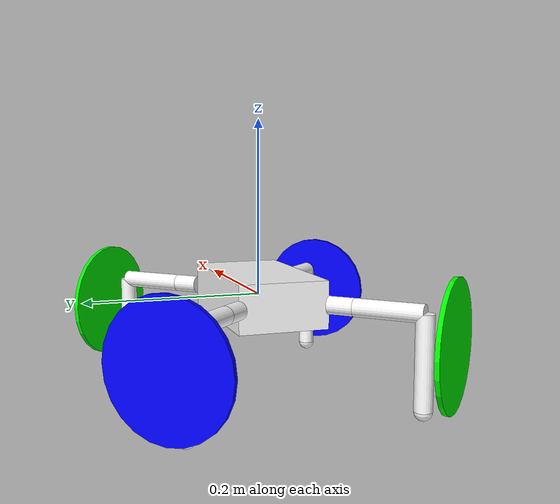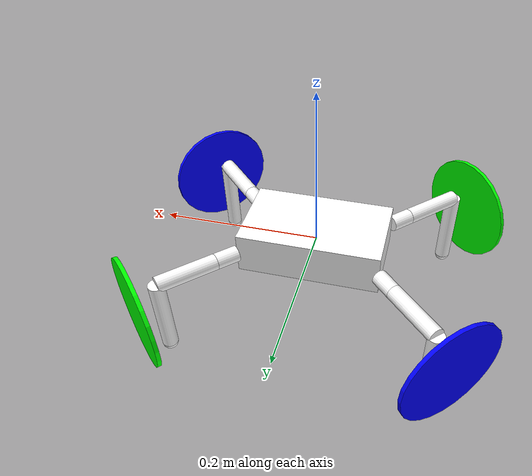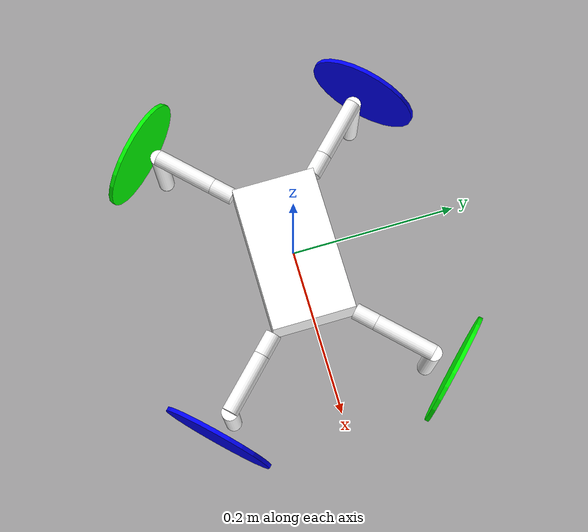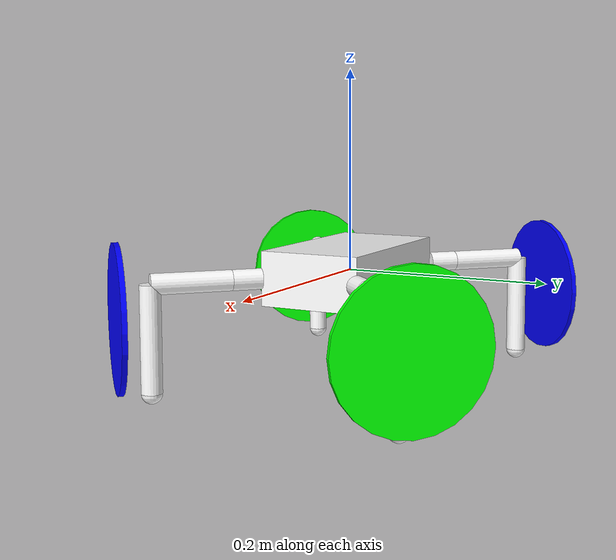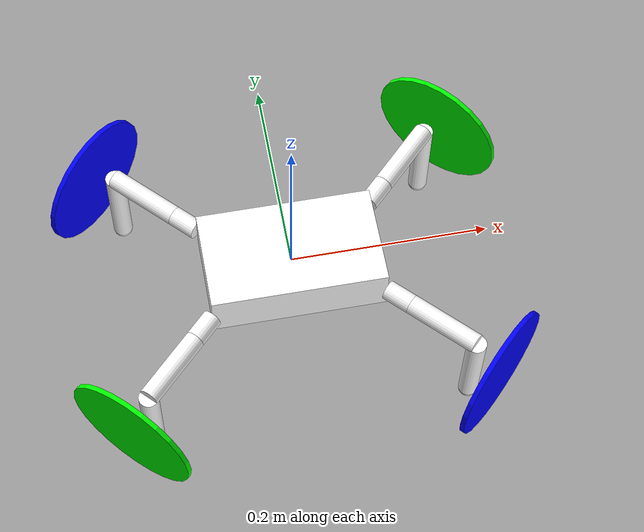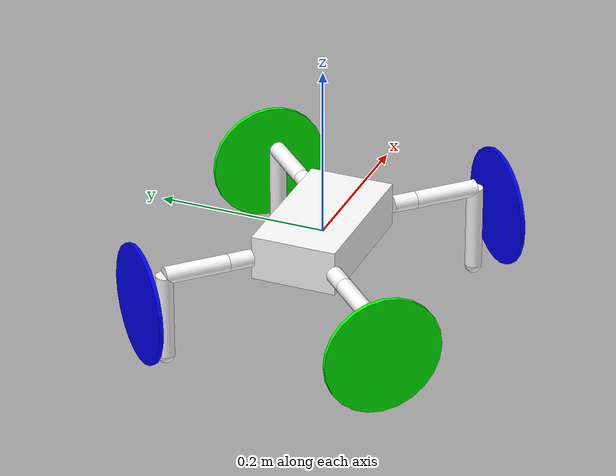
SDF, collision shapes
<sdf version="1.7">
  <model name="quadruped_copter">
    <link name="base_link">
      <inertial>
        <pose>0 0 0 0 -0 0</pose>
        <mass>0.5</mass>
        <inertia>
          <ixx>0.000542083</ixx>
          <ixy>0</ixy>
          <ixz>0</ixz>
          <iyy>0.00142242</iyy>
          <iyz>0</iyz>
          <izz>0.00173042</izz>
        </inertia>
      </inertial>
      <collision name="base_link_collision">
        <pose>0 0 0 0 -0 0</pose>
        <geometry>
          <box>
            <size>0.177 0.101 0.053</size>
          </box>
        </geometry>
        <surface>
          <friction>
            <ode>
              <mu2>1</mu2>
              <fdir1>1 0 0</fdir1>
              <mu1>1.0</mu1>
            </ode>
          </friction>
          <contact>
            <ode>
              <kp>1e+15</kp>
              <kd>1e+13</kd>
            </ode>
          </contact>
        </surface>
      </collision>
      <visual name="base_link_visual">
        <pose>0 0 -0.0265 0 -0 0</pose>
        <geometry>
          <mesh>
            <scale>1 1 1</scale>
            <uri>model://quadruped/meshes/hexapod_body.dae</uri>
          </mesh>
        </geometry>
        <material>
          <ambient>1 1 1</ambient>
          <diffuse>1 1 1</diffuse>
          <specular>1 1 1</specular>
          <pbr>
            <metal>
              <albedo_map>model://quadruped/materials/textures/silver_blue_metal/silver_blue_metal_diffuse.jpg</albedo_map>
              <metalness_map>model://quadruped/materials/textures/silver_blue_metal/silver_blue_metal_metallic.jpg</metalness_map>
              <normal_map>model://quadruped/materials/textures/silver_blue_metal/silver_blue_metal_normal.jpg</normal_map>
              <roughness_map>model://quadruped/materials/textures/silver_blue_metal/silver_blue_metal_roughness.jpg</roughness_map>
              <roughness>1.0</roughness>
              <metalness>1.0</metalness>
            </metal>
          </pbr>
        </material>
      </visual>
      <gravity>1</gravity>
      <velocity_decay/>
    </link>
    <joint name="coxa_bl_joint" type="revolute">
      <pose relative_to="base_link">-0.0885 0.0505 0 0 -0 2.35619</pose>
      <parent>base_link</parent>
      <child>coxa_bl_link</child>
      <axis>
        <xyz>0 0 1</xyz>
        <limit>
          <lower>-1.5708</lower>
          <upper>1.5708</upper>
          <effort>100</effort>
          <velocity>0.5</velocity>
        </limit>
        <dynamics>
          <spring_reference>0</spring_reference>
          <spring_stiffness>0</spring_stiffness>
        </dynamics>
      </axis>
      <physics>
        <ode>
          <limit>
            <cfm>0</cfm>
            <erp>0.2</erp>
          </limit>
        </ode>
      </physics>
    </joint>
    <link name="coxa_bl_link">
      <pose relative_to="coxa_bl_joint">0 0 0 0 -0 0</pose>
      <inertial>
        <pose>0.01425 0 0 0 1.5708 0</pose>
        <mass>0.1</mass>
        <inertia>
          <ixx>9.26875e-06</ixx>
          <ixy>0</ixy>
          <ixz>0</ixz>
          <iyy>9.26875e-06</iyy>
          <iyz>0</iyz>
          <izz>5e-06</izz>
        </inertia>
      </inertial>
      <collision name="coxa_bl_link_collision">
        <pose>0.01425 0 0 0 1.5708 0</pose>
        <geometry>
          <cylinder>
            <length>0.0285</length>
            <radius>0.01</radius>
          </cylinder>
        </geometry>
        <surface>
          <friction>
            <ode>
              <mu2>1</mu2>
              <fdir1>1 0 0</fdir1>
              <mu1>1.0</mu1>
            </ode>
          </friction>
          <contact>
            <ode/>
          </contact>
        </surface>
      </collision>
      <visual name="coxa_bl_link_visual">
        <pose>0 0 0.0196 0 -0 0</pose>
        <geometry>
          <mesh>
            <scale>1 1 1</scale>
            <uri>model://quadruped/meshes/hexapod_coxa_l.dae</uri>
          </mesh>
        </geometry>
        <material>
          <ambient>1 1 1</ambient>
          <diffuse>1 1 1</diffuse>
          <specular>1 1 1</specular>
          <pbr>
            <metal>
              <albedo_map>model://quadruped/materials/textures/silver_blue_metal/silver_blue_metal_diffuse.jpg</albedo_map>
              <metalness_map>model://quadruped/materials/textures/silver_blue_metal/silver_blue_metal_metallic.jpg</metalness_map>
              <normal_map>model://quadruped/materials/textures/silver_blue_metal/silver_blue_metal_normal.jpg</normal_map>
              <roughness_map>model://quadruped/materials/textures/silver_blue_metal/silver_blue_metal_roughness.jpg</roughness_map>
              <roughness>1.0</roughness>
              <metalness>1.0</metalness>
            </metal>
          </pbr>
        </material>
      </visual>
      <gravity>1</gravity>
      <velocity_decay/>
    </link>
    <joint name="femur_bl_joint" type="revolute">
      <pose relative_to="coxa_bl_link">0.0285 0 0 0 -0 0</pose>
      <parent>coxa_bl_link</parent>
      <child>femur_bl_link</child>
      <axis>
        <xyz>0 1 0</xyz>
        <limit>
          <lower>-1.5708</lower>
          <upper>1.5708</upper>
          <effort>100</effort>
          <velocity>0.5</velocity>
        </limit>
        <dynamics>
          <spring_reference>0</spring_reference>
          <spring_stiffness>0</spring_stiffness>
        </dynamics>
      </axis>
      <physics>
        <ode>
          <limit>
            <cfm>0</cfm>
            <erp>0.2</erp>
          </limit>
        </ode>
      </physics>
    </joint>
    <link name="femur_bl_link">
      <pose relative_to="femur_bl_joint">0 0 0 0 -0 0</pose>
      <inertial>
        <pose>0.0381 0 0 0 1.5708 0</pose>
        <mass>0.1</mass>
        <inertia>
          <ixx>5.0887e-05</ixx>
          <ixy>0</ixy>
          <ixz>0</ixz>
          <iyy>5.0887e-05</iyy>
          <iyz>0</iyz>
          <izz>5e-06</izz>
        </inertia>
      </inertial>
      <collision name="femur_bl_link_collision">
        <pose>0.0381 0 0 0 1.5708 0</pose>
        <geometry>
          <cylinder>
            <length>0.0762</length>
            <radius>0.01</radius>
          </cylinder>
        </geometry>
        <surface>
          <friction>
            <ode>
              <mu2>1</mu2>
              <fdir1>1 0 0</fdir1>
              <mu1>1.0</mu1>
            </ode>
          </friction>
          <contact>
            <ode/>
          </contact>
        </surface>
      </collision>
      <visual name="femur_bl_link_visual">
        <pose>0 -0.026 0 0 -0 0</pose>
        <geometry>
          <mesh>
            <scale>1 1 1</scale>
            <uri>model://quadruped/meshes/hexapod_femur_l.dae</uri>
          </mesh>
        </geometry>
        <material>
          <ambient>1 1 1</ambient>
          <diffuse>1 1 1</diffuse>
          <specular>1 1 1</specular>
          <pbr>
            <metal>
              <albedo_map>model://quadruped/materials/textures/silver_blue_metal/silver_blue_metal_diffuse.jpg</albedo_map>
              <metalness_map>model://quadruped/materials/textures/silver_blue_metal/silver_blue_metal_metallic.jpg</metalness_map>
              <normal_map>model://quadruped/materials/textures/silver_blue_metal/silver_blue_metal_normal.jpg</normal_map>
              <roughness_map>model://quadruped/materials/textures/silver_blue_metal/silver_blue_metal_roughness.jpg</roughness_map>
              <roughness>1.0</roughness>
              <metalness>1.0</metalness>
            </metal>
          </pbr>
        </material>
      </visual>
      <gravity>1</gravity>
      <velocity_decay/>
    </link>
    <joint name="tibia_bl_joint" type="revolute">
      <pose relative_to="femur_bl_link">0.0762 0 0 0 -0 0</pose>
      <parent>femur_bl_link</parent>
      <child>tibia_bl_link</child>
      <axis>
        <xyz>0 1 0</xyz>
        <limit>
          <lower>-1.5708</lower>
          <upper>1.5708</upper>
          <effort>100</effort>
          <velocity>0.5</velocity>
        </limit>
        <dynamics>
          <spring_reference>0</spring_reference>
          <spring_stiffness>0</spring_stiffness>
        </dynamics>
      </axis>
      <physics>
        <ode>
          <limit>
            <cfm>0</cfm>
            <erp>0.2</erp>
          </limit>
        </ode>
      </physics>
    </joint>
    <link name="tibia_bl_link">
      <pose relative_to="tibia_bl_joint">0 0 0 0 -0 0</pose>
      <inertial>
        <pose>0 0 -0.051 0 -0 0</pose>
        <mass>0.1</mass>
        <inertia>
          <ixx>8.92e-05</ixx>
          <ixy>0</ixy>
          <ixz>0</ixz>
          <iyy>8.92e-05</iyy>
          <iyz>0</iyz>
          <izz>5e-06</izz>
        </inertia>
      </inertial>
      <collision name="tibia_bl_link_collision">
        <pose>0 0 -0.051 0 -0 0</pose>
        <geometry>
          <cylinder>
            <length>0.102</length>
            <radius>0.01</radius>
          </cylinder>
        </geometry>
        <surface>
          <friction>
            <ode>
              <mu2>1</mu2>
              <fdir1>1 0 0</fdir1>
              <mu1>1.0</mu1>
            </ode>
          </friction>
          <contact>
            <ode/>
          </contact>
        </surface>
      </collision>
      <collision name="tibia_bl_link_fixed_joint_lump__foot_bl_link_collision_1">
        <pose>0 0 -0.102 0 -0 0</pose>
        <geometry>
          <sphere>
            <radius>0.01</radius>
          </sphere>
        </geometry>
        <surface>
          <friction>
            <ode>
              <mu2>1</mu2>
              <fdir1>1 0 0</fdir1>
              <mu1>1.0</mu1>
            </ode>
            <torsional>
              <coefficient>1</coefficient>
              <surface_radius>0.01</surface_radius>
              <use_patch_radius>0</use_patch_radius>
            </torsional>
          </friction>
          <contact>
            <ode>
              <kp>1e+15</kp>
              <kd>1e+13</kd>
            </ode>
          </contact>
        </surface>
      </collision>
      <visual name="tibia_bl_link_visual">
        <pose>0 -0.0185 0 0 -0 0</pose>
        <geometry>
          <mesh>
            <scale>1 1 1</scale>
            <uri>model://quadruped/meshes/hexapod_tibia_l.dae</uri>
          </mesh>
        </geometry>
        <material>
          <ambient>1 1 1</ambient>
          <diffuse>1 1 1</diffuse>
          <specular>1 1 1</specular>
          <pbr>
            <metal>
              <albedo_map>model://quadruped/materials/textures/silver_blue_metal/silver_blue_metal_diffuse.jpg</albedo_map>
              <metalness_map>model://quadruped/materials/textures/silver_blue_metal/silver_blue_metal_metallic.jpg</metalness_map>
              <normal_map>model://quadruped/materials/textures/silver_blue_metal/silver_blue_metal_normal.jpg</normal_map>
              <roughness_map>model://quadruped/materials/textures/silver_blue_metal/silver_blue_metal_roughness.jpg</roughness_map>
              <roughness>1.0</roughness>
              <metalness>1.0</metalness>
            </metal>
          </pbr>
        </material>
      </visual>
      <velocity_decay/>
      <gravity>1</gravity>
      <velocity_decay/>
    </link>
    <joint name="coxa_br_joint" type="revolute">
      <pose relative_to="base_link">-0.0885 -0.0505 0 0 0 -2.35619</pose>
      <parent>base_link</parent>
      <child>coxa_br_link</child>
      <axis>
        <xyz>0 0 1</xyz>
        <limit>
          <lower>-1.5708</lower>
          <upper>1.5708</upper>
          <effort>100</effort>
          <velocity>0.5</velocity>
        </limit>
        <dynamics>
          <spring_reference>0</spring_reference>
          <spring_stiffness>0</spring_stiffness>
        </dynamics>
      </axis>
      <physics>
        <ode>
          <limit>
            <cfm>0</cfm>
            <erp>0.2</erp>
          </limit>
        </ode>
      </physics>
    </joint>
    <link name="coxa_br_link">
      <pose relative_to="coxa_br_joint">0 0 0 0 -0 0</pose>
      <inertial>
        <pose>0.01425 0 0 0 1.5708 0</pose>
        <mass>0.1</mass>
        <inertia>
          <ixx>9.26875e-06</ixx>
          <ixy>0</ixy>
          <ixz>0</ixz>
          <iyy>9.26875e-06</iyy>
          <iyz>0</iyz>
          <izz>5e-06</izz>
        </inertia>
      </inertial>
      <collision name="coxa_br_link_collision">
        <pose>0.01425 0 0 0 1.5708 0</pose>
        <geometry>
          <cylinder>
            <length>0.0285</length>
            <radius>0.01</radius>
          </cylinder>
        </geometry>
        <surface>
          <friction>
            <ode>
              <mu2>1</mu2>
              <fdir1>1 0 0</fdir1>
              <mu1>1.0</mu1>
            </ode>
          </friction>
          <contact>
            <ode/>
          </contact>
        </surface>
      </collision>
      <visual name="coxa_br_link_visual">
        <pose>0 0 0.0196 0 -0 0</pose>
        <geometry>
          <mesh>
            <scale>1 1 1</scale>
            <uri>model://quadruped/meshes/hexapod_coxa_r.dae</uri>
          </mesh>
        </geometry>
        <material>
          <ambient>1 1 1</ambient>
          <diffuse>1 1 1</diffuse>
          <specular>1 1 1</specular>
          <pbr>
            <metal>
              <albedo_map>model://quadruped/materials/textures/silver_blue_metal/silver_blue_metal_diffuse.jpg</albedo_map>
              <metalness_map>model://quadruped/materials/textures/silver_blue_metal/silver_blue_metal_metallic.jpg</metalness_map>
              <normal_map>model://quadruped/materials/textures/silver_blue_metal/silver_blue_metal_normal.jpg</normal_map>
              <roughness_map>model://quadruped/materials/textures/silver_blue_metal/silver_blue_metal_roughness.jpg</roughness_map>
              <roughness>1.0</roughness>
              <metalness>1.0</metalness>
            </metal>
          </pbr>
        </material>
      </visual>
      <gravity>1</gravity>
      <velocity_decay/>
    </link>
    <joint name="femur_br_joint" type="revolute">
      <pose relative_to="coxa_br_link">0.0285 0 0 0 -0 0</pose>
      <parent>coxa_br_link</parent>
      <child>femur_br_link</child>
      <axis>
        <xyz>0 1 0</xyz>
        <limit>
          <lower>-1.5708</lower>
          <upper>1.5708</upper>
          <effort>100</effort>
          <velocity>0.5</velocity>
        </limit>
        <dynamics>
          <spring_reference>0</spring_reference>
          <spring_stiffness>0</spring_stiffness>
        </dynamics>
      </axis>
      <physics>
        <ode>
          <limit>
            <cfm>0</cfm>
            <erp>0.2</erp>
          </limit>
        </ode>
      </physics>
    </joint>
    <link name="femur_br_link">
      <pose relative_to="femur_br_joint">0 0 0 0 -0 0</pose>
      <inertial>
        <pose>0.0381 0 0 0 1.5708 0</pose>
        <mass>0.1</mass>
        <inertia>
          <ixx>5.0887e-05</ixx>
          <ixy>0</ixy>
          <ixz>0</ixz>
          <iyy>5.0887e-05</iyy>
          <iyz>0</iyz>
          <izz>5e-06</izz>
        </inertia>
      </inertial>
      <collision name="femur_br_link_collision">
        <pose>0.0381 0 0 0 1.5708 0</pose>
        <geometry>
          <cylinder>
            <length>0.0762</length>
            <radius>0.01</radius>
          </cylinder>
        </geometry>
        <surface>
          <friction>
            <ode>
              <mu2>1</mu2>
              <fdir1>1 0 0</fdir1>
              <mu1>1.0</mu1>
            </ode>
          </friction>
          <contact>
            <ode/>
          </contact>
        </surface>
      </collision>
      <visual name="femur_br_link_visual">
        <pose>0 0.026 0 0 -0 0</pose>
        <geometry>
          <mesh>
            <scale>1 1 1</scale>
            <uri>model://quadruped/meshes/hexapod_femur_r.dae</uri>
          </mesh>
        </geometry>
        <material>
          <ambient>1 1 1</ambient>
          <diffuse>1 1 1</diffuse>
          <specular>1 1 1</specular>
          <pbr>
            <metal>
              <albedo_map>model://quadruped/materials/textures/silver_blue_metal/silver_blue_metal_diffuse.jpg</albedo_map>
              <metalness_map>model://quadruped/materials/textures/silver_blue_metal/silver_blue_metal_metallic.jpg</metalness_map>
              <normal_map>model://quadruped/materials/textures/silver_blue_metal/silver_blue_metal_normal.jpg</normal_map>
              <roughness_map>model://quadruped/materials/textures/silver_blue_metal/silver_blue_metal_roughness.jpg</roughness_map>
              <roughness>1.0</roughness>
              <metalness>1.0</metalness>
            </metal>
          </pbr>
        </material>
      </visual>
      <gravity>1</gravity>
      <velocity_decay/>
    </link>
    <joint name="tibia_br_joint" type="revolute">
      <pose relative_to="femur_br_link">0.0762 0 0 0 -0 0</pose>
      <parent>femur_br_link</parent>
      <child>tibia_br_link</child>
      <axis>
        <xyz>0 1 0</xyz>
        <limit>
          <lower>-1.5708</lower>
          <upper>1.5708</upper>
          <effort>100</effort>
          <velocity>0.5</velocity>
        </limit>
        <dynamics>
          <spring_reference>0</spring_reference>
          <spring_stiffness>0</spring_stiffness>
        </dynamics>
      </axis>
      <physics>
        <ode>
          <limit>
            <cfm>0</cfm>
            <erp>0.2</erp>
          </limit>
        </ode>
      </physics>
    </joint>
    <link name="tibia_br_link">
      <pose relative_to="tibia_br_joint">0 0 0 0 -0 0</pose>
      <inertial>
        <pose>0 0 -0.051 0 -0 0</pose>
        <mass>0.1</mass>
        <inertia>
          <ixx>8.92e-05</ixx>
          <ixy>0</ixy>
          <ixz>0</ixz>
          <iyy>8.92e-05</iyy>
          <iyz>0</iyz>
          <izz>5e-06</izz>
        </inertia>
      </inertial>
      <collision name="tibia_br_link_collision">
        <pose>0 0 -0.051 0 -0 0</pose>
        <geometry>
          <cylinder>
            <length>0.102</length>
            <radius>0.01</radius>
          </cylinder>
        </geometry>
        <surface>
          <friction>
            <ode>
              <mu2>1</mu2>
              <fdir1>1 0 0</fdir1>
              <mu1>1.0</mu1>
            </ode>
          </friction>
          <contact>
            <ode/>
          </contact>
        </surface>
      </collision>
      <collision name="tibia_br_link_fixed_joint_lump__foot_br_link_collision_1">
        <pose>0 0 -0.102 0 -0 0</pose>
        <geometry>
          <sphere>
            <radius>0.01</radius>
          </sphere>
        </geometry>
        <surface>
          <friction>
            <ode>
              <mu2>1</mu2>
              <fdir1>1 0 0</fdir1>
              <mu1>1.0</mu1>
            </ode>
            <torsional>
              <coefficient>1</coefficient>
              <surface_radius>0.01</surface_radius>
              <use_patch_radius>0</use_patch_radius>
            </torsional>
          </friction>
          <contact>
            <ode>
              <kp>1e+15</kp>
              <kd>1e+13</kd>
            </ode>
          </contact>
        </surface>
      </collision>
      <visual name="tibia_br_link_visual">
        <pose>0 0.0185 0 0 -0 0</pose>
        <geometry>
          <mesh>
            <scale>1 1 1</scale>
            <uri>model://quadruped/meshes/hexapod_tibia_r.dae</uri>
          </mesh>
        </geometry>
        <material>
          <ambient>1 1 1</ambient>
          <diffuse>1 1 1</diffuse>
          <specular>1 1 1</specular>
          <pbr>
            <metal>
              <albedo_map>model://quadruped/materials/textures/silver_blue_metal/silver_blue_metal_diffuse.jpg</albedo_map>
              <metalness_map>model://quadruped/materials/textures/silver_blue_metal/silver_blue_metal_metallic.jpg</metalness_map>
              <normal_map>model://quadruped/materials/textures/silver_blue_metal/silver_blue_metal_normal.jpg</normal_map>
              <roughness_map>model://quadruped/materials/textures/silver_blue_metal/silver_blue_metal_roughness.jpg</roughness_map>
              <roughness>1.0</roughness>
              <metalness>1.0</metalness>
            </metal>
          </pbr>
        </material>
      </visual>
      <velocity_decay/>
      <gravity>1</gravity>
      <velocity_decay/>
    </link>
    <joint name="coxa_fl_joint" type="revolute">
      <pose relative_to="base_link">0.0885 0.0505 0 0 -0 0.785398</pose>
      <parent>base_link</parent>
      <child>coxa_fl_link</child>
      <axis>
        <xyz>0 0 1</xyz>
        <limit>
          <lower>-1.5708</lower>
          <upper>1.5708</upper>
          <effort>100</effort>
          <velocity>0.5</velocity>
        </limit>
        <dynamics>
          <spring_reference>0</spring_reference>
          <spring_stiffness>0</spring_stiffness>
        </dynamics>
      </axis>
      <physics>
        <ode>
          <limit>
            <cfm>0</cfm>
            <erp>0.2</erp>
          </limit>
        </ode>
      </physics>
    </joint>
    <link name="coxa_fl_link">
      <pose relative_to="coxa_fl_joint">0 0 0 0 -0 0</pose>
      <inertial>
        <pose>0.01425 0 0 0 1.5708 0</pose>
        <mass>0.1</mass>
        <inertia>
          <ixx>9.26875e-06</ixx>
          <ixy>0</ixy>
          <ixz>0</ixz>
          <iyy>9.26875e-06</iyy>
          <iyz>0</iyz>
          <izz>5e-06</izz>
        </inertia>
      </inertial>
      <collision name="coxa_fl_link_collision">
        <pose>0.01425 0 0 0 1.5708 0</pose>
        <geometry>
          <cylinder>
            <length>0.0285</length>
            <radius>0.01</radius>
          </cylinder>
        </geometry>
        <surface>
          <friction>
            <ode>
              <mu2>1</mu2>
              <fdir1>1 0 0</fdir1>
              <mu1>1.0</mu1>
            </ode>
          </friction>
          <contact>
            <ode/>
          </contact>
        </surface>
      </collision>
      <visual name="coxa_fl_link_visual">
        <pose>0 0 0.0196 0 -0 0</pose>
        <geometry>
          <mesh>
            <scale>1 1 1</scale>
            <uri>model://quadruped/meshes/hexapod_coxa_l.dae</uri>
          </mesh>
        </geometry>
        <material>
          <ambient>1 1 1</ambient>
          <diffuse>1 1 1</diffuse>
          <specular>1 1 1</specular>
          <pbr>
            <metal>
              <albedo_map>model://quadruped/materials/textures/silver_blue_metal/silver_blue_metal_diffuse.jpg</albedo_map>
              <metalness_map>model://quadruped/materials/textures/silver_blue_metal/silver_blue_metal_metallic.jpg</metalness_map>
              <normal_map>model://quadruped/materials/textures/silver_blue_metal/silver_blue_metal_normal.jpg</normal_map>
              <roughness_map>model://quadruped/materials/textures/silver_blue_metal/silver_blue_metal_roughness.jpg</roughness_map>
              <roughness>1.0</roughness>
              <metalness>1.0</metalness>
            </metal>
          </pbr>
        </material>
      </visual>
      <gravity>1</gravity>
      <velocity_decay/>
    </link>
    <joint name="femur_fl_joint" type="revolute">
      <pose relative_to="coxa_fl_link">0.0285 0 0 0 -0 0</pose>
      <parent>coxa_fl_link</parent>
      <child>femur_fl_link</child>
      <axis>
        <xyz>0 1 0</xyz>
        <limit>
          <lower>-1.5708</lower>
          <upper>1.5708</upper>
          <effort>100</effort>
          <velocity>0.5</velocity>
        </limit>
        <dynamics>
          <spring_reference>0</spring_reference>
          <spring_stiffness>0</spring_stiffness>
        </dynamics>
      </axis>
      <physics>
        <ode>
          <limit>
            <cfm>0</cfm>
            <erp>0.2</erp>
          </limit>
        </ode>
      </physics>
    </joint>
    <link name="femur_fl_link">
      <pose relative_to="femur_fl_joint">0 0 0 0 -0 0</pose>
      <inertial>
        <pose>0.0381 0 0 0 1.5708 0</pose>
        <mass>0.1</mass>
        <inertia>
          <ixx>5.0887e-05</ixx>
          <ixy>0</ixy>
          <ixz>0</ixz>
          <iyy>5.0887e-05</iyy>
          <iyz>0</iyz>
          <izz>5e-06</izz>
        </inertia>
      </inertial>
      <collision name="femur_fl_link_collision">
        <pose>0.0381 0 0 0 1.5708 0</pose>
        <geometry>
          <cylinder>
            <length>0.0762</length>
            <radius>0.01</radius>
          </cylinder>
        </geometry>
        <surface>
          <friction>
            <ode>
              <mu2>1</mu2>
              <fdir1>1 0 0</fdir1>
              <mu1>1.0</mu1>
            </ode>
          </friction>
          <contact>
            <ode/>
          </contact>
        </surface>
      </collision>
      <visual name="femur_fl_link_visual">
        <pose>0 -0.026 0 0 -0 0</pose>
        <geometry>
          <mesh>
            <scale>1 1 1</scale>
            <uri>model://quadruped/meshes/hexapod_femur_l.dae</uri>
          </mesh>
        </geometry>
        <material>
          <ambient>1 1 1</ambient>
          <diffuse>1 1 1</diffuse>
          <specular>1 1 1</specular>
          <pbr>
            <metal>
              <albedo_map>model://quadruped/materials/textures/silver_blue_metal/silver_blue_metal_diffuse.jpg</albedo_map>
              <metalness_map>model://quadruped/materials/textures/silver_blue_metal/silver_blue_metal_metallic.jpg</metalness_map>
              <normal_map>model://quadruped/materials/textures/silver_blue_metal/silver_blue_metal_normal.jpg</normal_map>
              <roughness_map>model://quadruped/materials/textures/silver_blue_metal/silver_blue_metal_roughness.jpg</roughness_map>
              <roughness>1.0</roughness>
              <metalness>1.0</metalness>
            </metal>
          </pbr>
        </material>
      </visual>
      <gravity>1</gravity>
      <velocity_decay/>
    </link>
    <joint name="tibia_fl_joint" type="revolute">
      <pose relative_to="femur_fl_link">0.0762 0 0 0 -0 0</pose>
      <parent>femur_fl_link</parent>
      <child>tibia_fl_link</child>
      <axis>
        <xyz>0 1 0</xyz>
        <limit>
          <lower>-1.5708</lower>
          <upper>1.5708</upper>
          <effort>100</effort>
          <velocity>0.5</velocity>
        </limit>
        <dynamics>
          <spring_reference>0</spring_reference>
          <spring_stiffness>0</spring_stiffness>
        </dynamics>
      </axis>
      <physics>
        <ode>
          <limit>
            <cfm>0</cfm>
            <erp>0.2</erp>
          </limit>
        </ode>
      </physics>
    </joint>
    <link name="tibia_fl_link">
      <pose relative_to="tibia_fl_joint">0 0 0 0 -0 0</pose>
      <inertial>
        <pose>0 0 -0.051 0 -0 0</pose>
        <mass>0.1</mass>
        <inertia>
          <ixx>8.92e-05</ixx>
          <ixy>0</ixy>
          <ixz>0</ixz>
          <iyy>8.92e-05</iyy>
          <iyz>0</iyz>
          <izz>5e-06</izz>
        </inertia>
      </inertial>
      <collision name="tibia_fl_link_collision">
        <pose>0 0 -0.051 0 -0 0</pose>
        <geometry>
          <cylinder>
            <length>0.102</length>
            <radius>0.01</radius>
          </cylinder>
        </geometry>
        <surface>
          <friction>
            <ode>
              <mu2>1</mu2>
              <fdir1>1 0 0</fdir1>
              <mu1>1.0</mu1>
            </ode>
          </friction>
          <contact>
            <ode/>
          </contact>
        </surface>
      </collision>
      <collision name="tibia_fl_link_fixed_joint_lump__foot_fl_link_collision_1">
        <pose>0 0 -0.102 0 -0 0</pose>
        <geometry>
          <sphere>
            <radius>0.01</radius>
          </sphere>
        </geometry>
        <surface>
          <friction>
            <ode>
              <mu2>1</mu2>
              <fdir1>1 0 0</fdir1>
              <mu1>1.0</mu1>
            </ode>
            <torsional>
              <coefficient>1</coefficient>
              <surface_radius>0.01</surface_radius>
              <use_patch_radius>0</use_patch_radius>
            </torsional>
          </friction>
          <contact>
            <ode>
              <kp>1e+15</kp>
              <kd>1e+13</kd>
            </ode>
          </contact>
        </surface>
      </collision>
      <visual name="tibia_fl_link_visual">
        <pose>0 -0.0185 0 0 -0 0</pose>
        <geometry>
          <mesh>
            <scale>1 1 1</scale>
            <uri>model://quadruped/meshes/hexapod_tibia_l.dae</uri>
          </mesh>
        </geometry>
        <material>
          <ambient>1 1 1</ambient>
          <diffuse>1 1 1</diffuse>
          <specular>1 1 1</specular>
          <pbr>
            <metal>
              <albedo_map>model://quadruped/materials/textures/silver_blue_metal/silver_blue_metal_diffuse.jpg</albedo_map>
              <metalness_map>model://quadruped/materials/textures/silver_blue_metal/silver_blue_metal_metallic.jpg</metalness_map>
              <normal_map>model://quadruped/materials/textures/silver_blue_metal/silver_blue_metal_normal.jpg</normal_map>
              <roughness_map>model://quadruped/materials/textures/silver_blue_metal/silver_blue_metal_roughness.jpg</roughness_map>
              <roughness>1.0</roughness>
              <metalness>1.0</metalness>
            </metal>
          </pbr>
        </material>
      </visual>
      <velocity_decay/>
      <gravity>1</gravity>
      <velocity_decay/>
    </link>
    <joint name="coxa_fr_joint" type="revolute">
      <pose relative_to="base_link">0.0885 -0.0505 0 0 0 -0.785398</pose>
      <parent>base_link</parent>
      <child>coxa_fr_link</child>
      <axis>
        <xyz>0 0 1</xyz>
        <limit>
          <lower>-1.5708</lower>
          <upper>1.5708</upper>
          <effort>100</effort>
          <velocity>0.5</velocity>
        </limit>
        <dynamics>
          <spring_reference>0</spring_reference>
          <spring_stiffness>0</spring_stiffness>
        </dynamics>
      </axis>
      <physics>
        <ode>
          <limit>
            <cfm>0</cfm>
            <erp>0.2</erp>
          </limit>
        </ode>
      </physics>
    </joint>
    <link name="coxa_fr_link">
      <pose relative_to="coxa_fr_joint">0 0 0 0 -0 0</pose>
      <inertial>
        <pose>0.01425 0 0 0 1.5708 0</pose>
        <mass>0.1</mass>
        <inertia>
          <ixx>9.26875e-06</ixx>
          <ixy>0</ixy>
          <ixz>0</ixz>
          <iyy>9.26875e-06</iyy>
          <iyz>0</iyz>
          <izz>5e-06</izz>
        </inertia>
      </inertial>
      <collision name="coxa_fr_link_collision">
        <pose>0.01425 0 0 0 1.5708 0</pose>
        <geometry>
          <cylinder>
            <length>0.0285</length>
            <radius>0.01</radius>
          </cylinder>
        </geometry>
        <surface>
          <friction>
            <ode>
              <mu2>1</mu2>
              <fdir1>1 0 0</fdir1>
              <mu1>1.0</mu1>
            </ode>
          </friction>
          <contact>
            <ode/>
          </contact>
        </surface>
      </collision>
      <visual name="coxa_fr_link_visual">
        <pose>0 0 0.0196 0 -0 0</pose>
        <geometry>
          <mesh>
            <scale>1 1 1</scale>
            <uri>model://quadruped/meshes/hexapod_coxa_r.dae</uri>
          </mesh>
        </geometry>
        <material>
          <ambient>1 1 1</ambient>
          <diffuse>1 1 1</diffuse>
          <specular>1 1 1</specular>
          <pbr>
            <metal>
              <albedo_map>model://quadruped/materials/textures/silver_blue_metal/silver_blue_metal_diffuse.jpg</albedo_map>
              <metalness_map>model://quadruped/materials/textures/silver_blue_metal/silver_blue_metal_metallic.jpg</metalness_map>
              <normal_map>model://quadruped/materials/textures/silver_blue_metal/silver_blue_metal_normal.jpg</normal_map>
              <roughness_map>model://quadruped/materials/textures/silver_blue_metal/silver_blue_metal_roughness.jpg</roughness_map>
              <roughness>1.0</roughness>
              <metalness>1.0</metalness>
            </metal>
          </pbr>
        </material>
      </visual>
      <gravity>1</gravity>
      <velocity_decay/>
    </link>
    <joint name="femur_fr_joint" type="revolute">
      <pose relative_to="coxa_fr_link">0.0285 0 0 0 -0 0</pose>
      <parent>coxa_fr_link</parent>
      <child>femur_fr_link</child>
      <axis>
        <xyz>0 1 0</xyz>
        <limit>
          <lower>-1.5708</lower>
          <upper>1.5708</upper>
          <effort>100</effort>
          <velocity>0.5</velocity>
        </limit>
        <dynamics>
          <spring_reference>0</spring_reference>
          <spring_stiffness>0</spring_stiffness>
        </dynamics>
      </axis>
      <physics>
        <ode>
          <limit>
            <cfm>0</cfm>
            <erp>0.2</erp>
          </limit>
        </ode>
      </physics>
    </joint>
    <link name="femur_fr_link">
      <pose relative_to="femur_fr_joint">0 0 0 0 -0 0</pose>
      <inertial>
        <pose>0.0381 0 0 0 1.5708 0</pose>
        <mass>0.1</mass>
        <inertia>
          <ixx>5.0887e-05</ixx>
          <ixy>0</ixy>
          <ixz>0</ixz>
          <iyy>5.0887e-05</iyy>
          <iyz>0</iyz>
          <izz>5e-06</izz>
        </inertia>
      </inertial>
      <collision name="femur_fr_link_collision">
        <pose>0.0381 0 0 0 1.5708 0</pose>
        <geometry>
          <cylinder>
            <length>0.0762</length>
            <radius>0.01</radius>
          </cylinder>
        </geometry>
        <surface>
          <friction>
            <ode>
              <mu2>1</mu2>
              <fdir1>1 0 0</fdir1>
              <mu1>1.0</mu1>
            </ode>
          </friction>
          <contact>
            <ode/>
          </contact>
        </surface>
      </collision>
      <visual name="femur_fr_link_visual">
        <pose>0 0.026 0 0 -0 0</pose>
        <geometry>
          <mesh>
            <scale>1 1 1</scale>
            <uri>model://quadruped/meshes/hexapod_femur_r.dae</uri>
          </mesh>
        </geometry>
        <material>
          <ambient>1 1 1</ambient>
          <diffuse>1 1 1</diffuse>
          <specular>1 1 1</specular>
          <pbr>
            <metal>
              <albedo_map>model://quadruped/materials/textures/silver_blue_metal/silver_blue_metal_diffuse.jpg</albedo_map>
              <metalness_map>model://quadruped/materials/textures/silver_blue_metal/silver_blue_metal_metallic.jpg</metalness_map>
              <normal_map>model://quadruped/materials/textures/silver_blue_metal/silver_blue_metal_normal.jpg</normal_map>
              <roughness_map>model://quadruped/materials/textures/silver_blue_metal/silver_blue_metal_roughness.jpg</roughness_map>
              <roughness>1.0</roughness>
              <metalness>1.0</metalness>
            </metal>
          </pbr>
        </material>
      </visual>
      <gravity>1</gravity>
      <velocity_decay/>
    </link>
    <joint name="tibia_fr_joint" type="revolute">
      <pose relative_to="femur_fr_link">0.0762 0 0 0 -0 0</pose>
      <parent>femur_fr_link</parent>
      <child>tibia_fr_link</child>
      <axis>
        <xyz>0 1 0</xyz>
        <limit>
          <lower>-1.5708</lower>
          <upper>1.5708</upper>
          <effort>100</effort>
          <velocity>0.5</velocity>
        </limit>
        <dynamics>
          <spring_reference>0</spring_reference>
          <spring_stiffness>0</spring_stiffness>
        </dynamics>
      </axis>
      <physics>
        <ode>
          <limit>
            <cfm>0</cfm>
            <erp>0.2</erp>
          </limit>
        </ode>
      </physics>
    </joint>
    <link name="tibia_fr_link">
      <pose relative_to="tibia_fr_joint">0 0 0 0 -0 0</pose>
      <inertial>
        <pose>0 0 -0.051 0 -0 0</pose>
        <mass>0.1</mass>
        <inertia>
          <ixx>8.92e-05</ixx>
          <ixy>0</ixy>
          <ixz>0</ixz>
          <iyy>8.92e-05</iyy>
          <iyz>0</iyz>
          <izz>5e-06</izz>
        </inertia>
      </inertial>
      <collision name="tibia_fr_link_collision">
        <pose>0 0 -0.051 0 -0 0</pose>
        <geometry>
          <cylinder>
            <length>0.102</length>
            <radius>0.01</radius>
          </cylinder>
        </geometry>
        <surface>
          <friction>
            <ode>
              <mu2>1</mu2>
              <fdir1>1 0 0</fdir1>
              <mu1>1.0</mu1>
            </ode>
          </friction>
          <contact>
            <ode/>
          </contact>
        </surface>
      </collision>
      <collision name="tibia_fr_link_fixed_joint_lump__foot_fr_link_collision_1">
        <pose>0 0 -0.102 0 -0 0</pose>
        <geometry>
          <sphere>
            <radius>0.01</radius>
          </sphere>
        </geometry>
        <surface>
          <friction>
            <ode>
              <mu2>1</mu2>
              <fdir1>1 0 0</fdir1>
              <mu1>1.0</mu1>
            </ode>
            <torsional>
              <coefficient>1</coefficient>
              <surface_radius>0.01</surface_radius>
              <use_patch_radius>0</use_patch_radius>
            </torsional>
          </friction>
          <contact>
            <ode>
              <kp>1e+15</kp>
              <kd>1e+13</kd>
            </ode>
          </contact>
        </surface>
      </collision>
      <visual name="tibia_fr_link_visual">
        <pose>0 0.0185 0 0 -0 0</pose>
        <geometry>
          <mesh>
            <scale>1 1 1</scale>
            <uri>model://quadruped/meshes/hexapod_tibia_r.dae</uri>
          </mesh>
        </geometry>
        <material>
          <ambient>1 1 1</ambient>
          <diffuse>1 1 1</diffuse>
          <specular>1 1 1</specular>
          <pbr>
            <metal>
              <albedo_map>model://quadruped/materials/textures/silver_blue_metal/silver_blue_metal_diffuse.jpg</albedo_map>
              <metalness_map>model://quadruped/materials/textures/silver_blue_metal/silver_blue_metal_metallic.jpg</metalness_map>
              <normal_map>model://quadruped/materials/textures/silver_blue_metal/silver_blue_metal_normal.jpg</normal_map>
              <roughness_map>model://quadruped/materials/textures/silver_blue_metal/silver_blue_metal_roughness.jpg</roughness_map>
              <roughness>1.0</roughness>
              <metalness>1.0</metalness>
            </metal>
          </pbr>
        </material>
      </visual>
      <velocity_decay/>
      <gravity>1</gravity>
      <velocity_decay/>
    </link>

    <!-- motor 3 cw front left -->
    <link name="motor3_fl_link">
      <pose relative_to="motor3_fl_joint">0 0 0 0 0 0</pose>
      <inertial>
        <mass>0.025</mass>
        <inertia>
          <ixx>9.75e-06</ixx>
          <ixy>0</ixy>
          <ixz>0</ixz>
          <iyy>0.000166704</iyy>
          <iyz>0</iyz>
          <izz>0.000167604</izz>
        </inertia>
      </inertial>
      <collision name="collision">
        <geometry>
          <cylinder>
            <length>0.005</length>
            <radius>0.07</radius>
          </cylinder>
        </geometry>
      </collision>
      <visual name="visual">
        <geometry>
          <mesh>
            <scale>0.7 0.7 0.7</scale>
            <uri>model://hexapod_copter/meshes/iris_prop_cw.dae</uri>
          </mesh>
        </geometry>
        <material>
          <ambient>0 1 0</ambient>
          <diffuse>0 1 0</diffuse>
          <specular>0.1 0.1 0.1 1</specular>
        </material>
      </visual>
    </link>
    <joint name="motor3_fl_joint" type="revolute">
      <pose relative_to="tibia_fl_link">0.03 0 -0.03 0 1.570796 0</pose>
      <child>motor3_fl_link</child>
      <parent>tibia_fl_link</parent>
      <axis>
        <xyz>0 0 1</xyz>
        <limit>
          <lower>-1e+16</lower>
          <upper>1e+16</upper>
        </limit>
        <dynamics>
          <damping>0.004</damping>
        </dynamics>
      </axis>
    </joint>

    <!-- motor 1 ccw front right -->
    <link name="motor1_fr_link">
      <pose relative_to="motor1_fr_joint">0 0 0 0 0 0</pose>
      <inertial>
        <mass>0.025</mass>
        <inertia>
          <ixx>9.75e-06</ixx>
          <ixy>0</ixy>
          <ixz>0</ixz>
          <iyy>0.000166704</iyy>
          <iyz>0</iyz>
          <izz>0.000167604</izz>
        </inertia>
      </inertial>
      <collision name="collision">
        <geometry>
          <cylinder>
            <length>0.005</length>
            <radius>0.07</radius>
          </cylinder>
        </geometry>
      </collision>
      <visual name="visual">
        <geometry>
          <mesh>
            <scale>0.7 0.7 0.7</scale>
            <uri>model://hexapod_copter/meshes/iris_prop_ccw.dae</uri>
          </mesh>
        </geometry>
        <material>
          <ambient>0 0 1</ambient>
          <diffuse>0 0 1</diffuse>
          <specular>0.1 0.1 0.1 1</specular>
        </material>
      </visual>
    </link>
    <joint name="motor1_fr_joint" type="revolute">
      <pose relative_to="tibia_fr_link">0.03 0 -0.03 0 1.570796 0</pose>
      <child>motor1_fr_link</child>
      <parent>tibia_fr_link</parent>
      <axis>
        <xyz>0 0 1</xyz>
        <limit>
          <lower>-1e+16</lower>
          <upper>1e+16</upper>
        </limit>
        <dynamics>
          <damping>0.004</damping>
        </dynamics>
      </axis>
    </joint>

    <!-- motor 2 ccw back left -->
    <link name="motor2_bl_link">
      <pose relative_to="motor2_bl_joint">0 0 0 0 0 0</pose>
      <inertial>
        <mass>0.025</mass>
        <inertia>
          <ixx>9.75e-06</ixx>
          <ixy>0</ixy>
          <ixz>0</ixz>
          <iyy>0.000166704</iyy>
          <iyz>0</iyz>
          <izz>0.000167604</izz>
        </inertia>
      </inertial>
      <collision name="collision">
        <geometry>
          <cylinder>
            <length>0.005</length>
            <radius>0.07</radius>
          </cylinder>
        </geometry>
      </collision>
      <visual name="visual">
        <geometry>
          <mesh>
            <scale>0.7 0.7 0.7</scale>
            <uri>model://hexapod_copter/meshes/iris_prop_ccw.dae</uri>
          </mesh>
        </geometry>
        <material>
          <ambient>0 0 1</ambient>
          <diffuse>0 0 1</diffuse>
          <specular>0.1 0.1 0.1 1</specular>
        </material>
      </visual>
    </link>
    <joint name="motor2_bl_joint" type="revolute">
      <pose relative_to="tibia_bl_link">0.03 0 -0.03 0 1.570796 0</pose>
      <child>motor2_bl_link</child>
      <parent>tibia_bl_link</parent>
      <axis>
        <xyz>0 0 1</xyz>
        <limit>
          <lower>-1e+16</lower>
          <upper>1e+16</upper>
        </limit>
        <dynamics>
          <damping>0.004</damping>
        </dynamics>
      </axis>
    </joint>

    <!-- motor 4 cw back right -->
    <link name="motor4_br_link">
      <pose relative_to="motor4_br_joint">0 0 0 0 0 0</pose>
      <inertial>
        <mass>0.025</mass>
        <inertia>
          <ixx>9.75e-06</ixx>
          <ixy>0</ixy>
          <ixz>0</ixz>
          <iyy>0.000166704</iyy>
          <iyz>0</iyz>
          <izz>0.000167604</izz>
        </inertia>
      </inertial>
      <collision name="collision">
        <geometry>
          <cylinder>
            <length>0.005</length>
            <radius>0.07</radius>
          </cylinder>
        </geometry>
      </collision>
      <visual name="visual">
        <geometry>
          <mesh>
            <scale>0.7 0.7 0.7</scale>
            <uri>model://hexapod_copter/meshes/iris_prop_cw.dae</uri>
          </mesh>
        </geometry>
        <material>
          <ambient>0 1 0</ambient>
          <diffuse>0 1 0</diffuse>
          <specular>0.1 0.1 0.1 1</specular>
        </material>
      </visual>
    </link>
    <joint name="motor4_br_joint" type="revolute">
      <pose relative_to="tibia_br_link">0.03 0 -0.03 0 1.570796 0</pose>
      <child>motor4_br_link</child>
      <parent>tibia_br_link</parent>
      <axis>
        <xyz>0 0 1</xyz>
        <limit>
          <lower>-1e+16</lower>
          <upper>1e+16</upper>
        </limit>
        <dynamics>
          <damping>0.004</damping>
        </dynamics>
      </axis>
    </joint>

    <!-- sensors -->
    <link name="imu_link">
      <inertial>
        <pose>0 0 0 0 0 0</pose>
        <mass>0.15</mass>
        <inertia>
          <ixx>0.00002</ixx>
          <ixy>0</ixy>
          <ixz>0</ixz>
          <iyy>0.00002</iyy>
          <iyz>0</iyz>
          <izz>0.00002</izz>
        </inertia>
      </inertial>
      <sensor name="imu_sensor" type="imu">
        <pose>0 0 0 3.141593 0 0</pose>
        <always_on>1</always_on>
        <update_rate>1000.0</update_rate>
      </sensor>
    </link>
    <joint name="imu_joint" type="revolute">
      <child>imu_link</child>
      <parent>base_link</parent>
      <axis>
        <xyz>0 0 1</xyz>
        <limit>
          <lower>0</lower>
          <upper>0</upper>
          <effort>0</effort>
          <velocity>0</velocity>
        </limit>
        <dynamics>
          <damping>1.0</damping>
        </dynamics>
        <use_parent_model_frame>1</use_parent_model_frame>
      </axis>
    </joint>

    <!-- plugins -->
    <plugin filename="libgz-sim-joint-state-publisher-system.so"
      name="gz::sim::systems::JointStatePublisher">
    </plugin>

    <plugin filename="gz-sim-joint-position-controller-system"
        name="gz::sim::systems::JointPositionController">
      <joint_name>coxa_bl_joint</joint_name>
      <topic>/coxa_bl_joint/cmd_pos</topic>
      <p_gain>10</p_gain>
      <i_gain>0</i_gain>
      <d_gain>0.1</d_gain>
      <i_max>1</i_max>
      <i_min>-1</i_min>
      <cmd_max>5</cmd_max>
      <cmd_min>-5</cmd_min>
    </plugin>
    <plugin filename="gz-sim-joint-position-controller-system"
        name="gz::sim::systems::JointPositionController">
      <joint_name>femur_bl_joint</joint_name>
      <topic>/femur_bl_joint/cmd_pos</topic>
      <initial_position>-0.5</initial_position>
      <p_gain>10</p_gain>
      <i_gain>0</i_gain>
      <d_gain>0.1</d_gain>
      <i_max>1</i_max>
      <i_min>-1</i_min>
      <cmd_max>5</cmd_max>
      <cmd_min>-5</cmd_min>
    </plugin>
    <plugin filename="gz-sim-joint-position-controller-system"
        name="gz::sim::systems::JointPositionController">
      <joint_name>tibia_bl_joint</joint_name>
      <topic>/tibia_bl_joint/cmd_pos</topic>
      <initial_position>-1</initial_position>
      <p_gain>10</p_gain>
      <i_gain>0</i_gain>
      <d_gain>0.1</d_gain>
      <i_max>1</i_max>
      <i_min>-1</i_min>
      <cmd_max>5</cmd_max>
      <cmd_min>-5</cmd_min>
    </plugin>

    <plugin filename="gz-sim-joint-position-controller-system"
        name="gz::sim::systems::JointPositionController">
      <joint_name>coxa_br_joint</joint_name>
      <topic>/coxa_br_joint/cmd_pos</topic>
      <p_gain>10</p_gain>
      <i_gain>0</i_gain>
      <d_gain>0.1</d_gain>
      <i_max>1</i_max>
      <i_min>-1</i_min>
      <cmd_max>5</cmd_max>
      <cmd_min>-5</cmd_min>
    </plugin>
    <plugin filename="gz-sim-joint-position-controller-system"
        name="gz::sim::systems::JointPositionController">
      <joint_name>femur_br_joint</joint_name>
      <topic>/femur_br_joint/cmd_pos</topic>
      <initial_position>-0.5</initial_position>
      <p_gain>10</p_gain>
      <i_gain>0</i_gain>
      <d_gain>0.1</d_gain>
      <i_max>1</i_max>
      <i_min>-1</i_min>
      <cmd_max>5</cmd_max>
      <cmd_min>-5</cmd_min>
    </plugin>
    <plugin filename="gz-sim-joint-position-controller-system"
        name="gz::sim::systems::JointPositionController">
      <joint_name>tibia_br_joint</joint_name>
      <topic>/tibia_br_joint/cmd_pos</topic>
      <initial_position>-1</initial_position>
      <p_gain>10</p_gain>
      <i_gain>0</i_gain>
      <d_gain>0.1</d_gain>
      <i_max>1</i_max>
      <i_min>-1</i_min>
      <cmd_max>5</cmd_max>
      <cmd_min>-5</cmd_min>
    </plugin>

    <plugin filename="gz-sim-joint-position-controller-system"
        name="gz::sim::systems::JointPositionController">
      <joint_name>coxa_fl_joint</joint_name>
      <topic>/coxa_fl_joint/cmd_pos</topic>
      <p_gain>10</p_gain>
      <i_gain>0</i_gain>
      <d_gain>0.1</d_gain>
      <i_max>1</i_max>
      <i_min>-1</i_min>
      <cmd_max>5</cmd_max>
      <cmd_min>-5</cmd_min>
    </plugin>
    <plugin filename="gz-sim-joint-position-controller-system"
        name="gz::sim::systems::JointPositionController">
      <joint_name>femur_fl_joint</joint_name>
      <topic>/femur_fl_joint/cmd_pos</topic>
      <initial_position>-0.5</initial_position>
      <p_gain>10</p_gain>
      <i_gain>0</i_gain>
      <d_gain>0.1</d_gain>
      <i_max>1</i_max>
      <i_min>-1</i_min>
      <cmd_max>5</cmd_max>
      <cmd_min>-5</cmd_min>
    </plugin>
    <plugin filename="gz-sim-joint-position-controller-system"
        name="gz::sim::systems::JointPositionController">
      <joint_name>tibia_fl_joint</joint_name>
      <topic>/tibia_fl_joint/cmd_pos</topic>
      <initial_position>-1</initial_position>
      <p_gain>10</p_gain>
      <i_gain>0</i_gain>
      <d_gain>0.1</d_gain>
      <i_max>1</i_max>
      <i_min>-1</i_min>
      <cmd_max>5</cmd_max>
      <cmd_min>-5</cmd_min>
    </plugin>

    <plugin filename="gz-sim-joint-position-controller-system"
        name="gz::sim::systems::JointPositionController">
      <joint_name>coxa_fr_joint</joint_name>
      <topic>/coxa_fr_joint/cmd_pos</topic>
      <p_gain>10</p_gain>
      <i_gain>0</i_gain>
      <d_gain>0.1</d_gain>
      <i_max>1</i_max>
      <i_min>-1</i_min>
      <cmd_max>5</cmd_max>
      <cmd_min>-5</cmd_min>
    </plugin>
    <plugin filename="gz-sim-joint-position-controller-system"
        name="gz::sim::systems::JointPositionController">
      <joint_name>femur_fr_joint</joint_name>
      <topic>/femur_fr_joint/cmd_pos</topic>
      <initial_position>-0.5</initial_position>
      <p_gain>10</p_gain>
      <i_gain>0</i_gain>
      <d_gain>0.1</d_gain>
      <i_max>1</i_max>
      <i_min>-1</i_min>
      <cmd_max>5</cmd_max>
      <cmd_min>-5</cmd_min>
    </plugin>
    <plugin filename="gz-sim-joint-position-controller-system"
        name="gz::sim::systems::JointPositionController">
      <joint_name>tibia_fr_joint</joint_name>
      <topic>/tibia_fr_joint/cmd_pos</topic>
      <initial_position>-1</initial_position>
      <p_gain>10</p_gain>
      <i_gain>0</i_gain>
      <d_gain>0.1</d_gain>
      <i_max>1</i_max>
      <i_min>-1</i_min>
      <cmd_max>5</cmd_max>
      <cmd_min>-5</cmd_min>
    </plugin>

    <!-- lift-drag setting for props taken from iris -->

    <!-- motor 3 cw - front left -->
    <plugin filename="gz-sim-lift-drag-system"
        name="gz::sim::systems::LiftDrag">
      <a0>0.3</a0>
      <alpha_stall>1.4</alpha_stall>
      <cla>4.25</cla>
      <cda>0.10</cda>
      <cma>0.00</cma>
      <cla_stall>-0.025</cla_stall>
      <cda_stall>0.0</cda_stall>
      <cma_stall>0.0</cma_stall>
      <area>0.002</area>
      <air_density>1.2041</air_density>
      <cp>0.084 0 0</cp>
      <forward>0 -1 0</forward>
      <upward>0 0 1</upward>
      <link_name>motor3_fl_link</link_name>
    </plugin>
    <plugin filename="gz-sim-lift-drag-system"
        name="gz::sim::systems::LiftDrag">
      <a0>0.3</a0>
      <alpha_stall>1.4</alpha_stall>
      <cla>4.25</cla>
      <cda>0.10</cda>
      <cma>0.00</cma>
      <cla_stall>-0.025</cla_stall>
      <cda_stall>0.0</cda_stall>
      <cma_stall>0.0</cma_stall>
      <area>0.002</area>
      <air_density>1.2041</air_density>
      <cp>-0.084 0 0</cp>
      <forward>0 1 0</forward>
      <upward>0 0 1</upward>
      <link_name>motor3_fl_link</link_name>
    </plugin>

    <!-- motor 2 ccw - back left -->
    <plugin filename="gz-sim-lift-drag-system"
        name="gz::sim::systems::LiftDrag">
      <a0>0.3</a0>
      <alpha_stall>1.4</alpha_stall>
      <cla>4.25</cla>
      <cda>0.10</cda>
      <cma>0.00</cma>
      <cla_stall>-0.025</cla_stall>
      <cda_stall>0.0</cda_stall>
      <cma_stall>0.0</cma_stall>
      <area>0.002</area>
      <air_density>1.2041</air_density>
      <cp>0.084 0 0</cp>
      <forward>0 1 0</forward>
      <upward>0 0 1</upward>
      <link_name>motor2_bl_link</link_name>
    </plugin>
    <plugin filename="gz-sim-lift-drag-system"
        name="gz::sim::systems::LiftDrag">
      <a0>0.3</a0>
      <alpha_stall>1.4</alpha_stall>
      <cla>4.25</cla>
      <cda>0.10</cda>
      <cma>0.00</cma>
      <cla_stall>-0.025</cla_stall>
      <cda_stall>0.0</cda_stall>
      <cma_stall>0.0</cma_stall>
      <area>0.002</area>
      <air_density>1.2041</air_density>
      <cp>-0.084 0 0</cp>
      <forward>0 -1 0</forward>
      <upward>0 0 1</upward>
      <link_name>motor2_bl_link</link_name>
    </plugin>

     <!-- motor 1 ccw - front right -->
    <plugin filename="gz-sim-lift-drag-system"
        name="gz::sim::systems::LiftDrag">
      <a0>0.3</a0>
      <alpha_stall>1.4</alpha_stall>
      <cla>4.25</cla>
      <cda>0.10</cda>
      <cma>0.00</cma>
      <cla_stall>-0.025</cla_stall>
      <cda_stall>0.0</cda_stall>
      <cma_stall>0.0</cma_stall>
      <area>0.002</area>
      <air_density>1.2041</air_density>
      <cp>0.084 0 0</cp>
      <forward>0 1 0</forward>
      <upward>0 0 1</upward>
      <link_name>motor1_fr_link</link_name>
    </plugin>
    <plugin filename="gz-sim-lift-drag-system"
        name="gz::sim::systems::LiftDrag">
      <a0>0.3</a0>
      <alpha_stall>1.4</alpha_stall>
      <cla>4.25</cla>
      <cda>0.10</cda>
      <cma>0.00</cma>
      <cla_stall>-0.025</cla_stall>
      <cda_stall>0.0</cda_stall>
      <cma_stall>0.0</cma_stall>
      <area>0.002</area>
      <air_density>1.2041</air_density>
      <cp>-0.084 0 0</cp>
      <forward>0 -1 0</forward>
      <upward>0 0 1</upward>
      <link_name>motor1_fr_link</link_name>
    </plugin>

    <!-- motor 4 cw - back right -->
    <plugin filename="gz-sim-lift-drag-system"
        name="gz::sim::systems::LiftDrag">
      <a0>0.3</a0>
      <alpha_stall>1.4</alpha_stall>
      <cla>4.25</cla>
      <cda>0.10</cda>
      <cma>0.00</cma>
      <cla_stall>-0.025</cla_stall>
      <cda_stall>0.0</cda_stall>
      <cma_stall>0.0</cma_stall>
      <area>0.002</area>
      <air_density>1.2041</air_density>
      <cp>0.084 0 0</cp>
      <forward>0 -1 0</forward>
      <upward>0 0 1</upward>
      <link_name>motor4_br_link</link_name>
    </plugin>
    <plugin filename="gz-sim-lift-drag-system"
        name="gz::sim::systems::LiftDrag">
      <a0>0.3</a0>
      <alpha_stall>1.4</alpha_stall>
      <cla>4.25</cla>
      <cda>0.10</cda>
      <cma>0.00</cma>
      <cla_stall>-0.025</cla_stall>
      <cda_stall>0.0</cda_stall>
      <cma_stall>0.0</cma_stall>
      <area>0.002</area>
      <air_density>1.2041</air_density>
      <cp>-0.084 0 0</cp>
      <forward>0 1 0</forward>
      <upward>0 0 1</upward>
      <link_name>motor4_br_link</link_name>
    </plugin>

    <plugin name="ArduPilotPlugin" filename="ArduPilotPlugin">
      <!-- Communication -->
      <fdm_addr>127.0.0.1</fdm_addr>
      <fdm_port_in>9002</fdm_port_in>
      <connectionTimeoutMaxCount>5</connectionTimeoutMaxCount>
      <lock_step>1</lock_step>

      <!-- Transforms -->
      <gazeboXYZToNED>0 0 0 3.141593 0 1.57079632</gazeboXYZToNED>
      <modelXYZToAirplaneXForwardZDown>0 0 0 3.141593 0 0</modelXYZToAirplaneXForwardZDown>

      <!-- Sensors -->
      <imuName>imu_link::imu_sensor</imuName>

      <!-- Velocity control -->
      <!--
        ccw:  positive multiplier
        cw:   negative multiplier
      -->
      <!--
          SERVO1_FUNCTION 33 (Motor1)
          SERVO1_MAX        2000
          SERVO1_MIN        1000
          SERVO1_REVERSED      0
          SERVO1_TRIM       1500
      -->
      <!-- motor 1 ccw -->
      <control channel="0">
        <jointName>motor1_fr_joint</jointName>
        <useForce>1</useForce>
        <multiplier>838</multiplier>
        <offset>0</offset>
        <servo_min>1000</servo_min>
        <servo_max>2000</servo_max>
        <type>VELOCITY</type>
        <p_gain>0.20</p_gain>
        <i_gain>0</i_gain>
        <d_gain>0</d_gain>
        <i_max>1</i_max>
        <i_min>-1</i_min>
        <cmd_max>5.0</cmd_max>
        <cmd_min>-5.0</cmd_min>
      </control>

      <!--
          SERVO2_FUNCTION 34 (Motor2)
          SERVO2_MAX        2000
          SERVO2_MIN        1000
          SERVO2_REVERSED      0
          SERVO2_TRIM       1500
      -->
      <!-- motor 2 ccw -->
      <control channel="1">
        <jointName>motor2_bl_joint</jointName>
        <useForce>1</useForce>
        <multiplier>838</multiplier>
        <offset>0</offset>
        <servo_min>1000</servo_min>
        <servo_max>2000</servo_max>
        <type>VELOCITY</type>
        <p_gain>0.20</p_gain>
        <i_gain>0</i_gain>
        <d_gain>0</d_gain>
        <i_max>1</i_max>
        <i_min>-1</i_min>
        <cmd_max>5.0</cmd_max>
        <cmd_min>-5.0</cmd_min>
      </control>

      <!--
          SERVO3_FUNCTION 35 (Motor3)
          SERVO3_MAX        2000
          SERVO3_MIN        1000
          SERVO3_REVERSED      0
          SERVO3_TRIM       1500
      -->
      <!-- motor 3 cw -->
      <control channel="2">
        <jointName>motor3_fl_joint</jointName>
        <useForce>1</useForce>
        <multiplier>-838</multiplier>
        <offset>0</offset>
        <servo_min>1000</servo_min>
        <servo_max>2000</servo_max>
        <type>VELOCITY</type>
        <p_gain>0.20</p_gain>
        <i_gain>0</i_gain>
        <d_gain>0</d_gain>
        <i_max>1</i_max>
        <i_min>-1</i_min>
        <cmd_max>5.0</cmd_max>
        <cmd_min>-5.0</cmd_min>
      </control>

      <!--
          SERVO4_FUNCTION 36 (Motor4)
          SERVO4_MAX        2000
          SERVO4_MIN        1000
          SERVO4_REVERSED      0
          SERVO4_TRIM       1500
      -->
      <!-- motor 4 cw -->
      <control channel="3">
        <jointName>motor4_br_joint</jointName>
        <useForce>1</useForce>
        <multiplier>-838</multiplier>
        <offset>0</offset>
        <servo_min>1000</servo_min>
        <servo_max>2000</servo_max>
        <type>VELOCITY</type>
        <p_gain>0.20</p_gain>
        <i_gain>0</i_gain>
        <d_gain>0</d_gain>
        <i_max>1</i_max>
        <i_min>-1</i_min>
        <cmd_max>5.0</cmd_max>
        <cmd_min>-5.0</cmd_min>
      </control>

      <!-- Leg control -->

      <!--
          SERVO5_FUNCTION 98 (Script 5)
          SERVO5_MAX        2000
          SERVO5_MIN        1000
          SERVO5_REVERSED      0
          SERVO5_TRIM       1500
      -->
      <control channel="4">
        <jointName>coxa_fr_joint</jointName>
        <useForce>1</useForce>
        <multiplier>3.1415926</multiplier>
        <offset>-0.5</offset>
        <servo_min>1000</servo_min>
        <servo_max>2000</servo_max>
        <type>COMMAND</type>
        <cmd_topic>coxa_fr_joint/cmd_pos</cmd_topic>
      </control>

      <!--
          SERVO6_FUNCTION 99 (Script 6)
      -->
      <control channel="5">
        <jointName>femur_fr_joint</jointName>
        <useForce>1</useForce>
        <multiplier>-3.1415926</multiplier>
        <offset>-0.5</offset>
        <servo_min>1000</servo_min>
        <servo_max>2000</servo_max>
        <type>COMMAND</type>
        <cmd_topic>femur_fr_joint/cmd_pos</cmd_topic>
      </control>

      <!--
          SERVO7_FUNCTION 100 (Script 7)
      -->
      <control channel="6">
        <jointName>tibia_fr_joint</jointName>
        <useForce>1</useForce>
        <multiplier>3.1415926</multiplier>
        <offset>-0.5</offset>
        <servo_min>1000</servo_min>
        <servo_max>2000</servo_max>
        <type>COMMAND</type>
        <cmd_topic>tibia_fr_joint/cmd_pos</cmd_topic>
      </control>

      <!--
          SERVO8_FUNCTION 101 (Script 8)
      -->
      <control channel="7">
        <jointName>coxa_fl_joint</jointName>
        <useForce>1</useForce>
        <multiplier>3.1415926</multiplier>
        <offset>-0.5</offset>
        <servo_min>1000</servo_min>
        <servo_max>2000</servo_max>
        <type>COMMAND</type>
        <cmd_topic>coxa_fl_joint/cmd_pos</cmd_topic>
      </control>

      <!--
          SERVO9_FUNCTION 102 (Script 9)
      -->
      <control channel="8">
        <jointName>femur_fl_joint</jointName>
        <useForce>1</useForce>
        <multiplier>3.1415926</multiplier>
        <offset>-0.5</offset>
        <servo_min>1000</servo_min>
        <servo_max>2000</servo_max>
        <type>COMMAND</type>
        <cmd_topic>femur_fl_joint/cmd_pos</cmd_topic>
      </control>

      <!--
          SERVO10_FUNCTION 103 (Script 10)
      -->
      <control channel="9">
        <jointName>tibia_fl_joint</jointName>
        <useForce>1</useForce>
        <multiplier>-3.1415926</multiplier>
        <offset>-0.5</offset>
        <servo_min>1000</servo_min>
        <servo_max>2000</servo_max>
        <type>COMMAND</type>
        <cmd_topic>tibia_fl_joint/cmd_pos</cmd_topic>
      </control>

      <!--
          SERVO11_FUNCTION 104 (Script 11)
      -->
      <control channel="10">
        <jointName>coxa_bl_joint</jointName>
        <useForce>1</useForce>
        <multiplier>3.1415926</multiplier>
        <offset>-0.5</offset>
        <servo_min>1000</servo_min>
        <servo_max>2000</servo_max>
        <type>COMMAND</type>
        <cmd_topic>coxa_bl_joint/cmd_pos</cmd_topic>
      </control>

      <!--
          SERVO12_FUNCTION 105 (Script 12)
      -->
      <control channel="11">
        <jointName>femur_bl_joint</jointName>
        <useForce>1</useForce>
        <multiplier>-3.1415926</multiplier>
        <offset>-0.5</offset>
        <servo_min>1000</servo_min>
        <servo_max>2000</servo_max>
        <type>COMMAND</type>
        <cmd_topic>femur_bl_joint/cmd_pos</cmd_topic>
      </control>

      <!--
          SERVO13_FUNCTION 106 (Script 13)
      -->
      <control channel="12">
        <jointName>tibia_bl_joint</jointName>
        <useForce>1</useForce>
        <multiplier>3.1415926</multiplier>
        <offset>-0.5</offset>
        <servo_min>1000</servo_min>
        <servo_max>2000</servo_max>
        <type>COMMAND</type>
        <cmd_topic>tibia_bl_joint/cmd_pos</cmd_topic>
      </control>

      <!--
          SERVO14_FUNCTION 107 (Script 14)
      -->
      <control channel="13">
        <jointName>coxa_br_joint</jointName>
        <useForce>1</useForce>
        <multiplier>3.1415926</multiplier>
        <offset>-0.5</offset>
        <servo_min>1000</servo_min>
        <servo_max>2000</servo_max>
        <type>COMMAND</type>
        <cmd_topic>coxa_br_joint/cmd_pos</cmd_topic>
      </control>

      <!--
          SERVO15_FUNCTION 108 (Script 15)
      -->
      <control channel="14">
        <jointName>femur_br_joint</jointName>
        <useForce>1</useForce>
        <multiplier>3.1415926</multiplier>
        <offset>-0.5</offset>
        <servo_min>1000</servo_min>
        <servo_max>2000</servo_max>
        <type>COMMAND</type>
        <cmd_topic>femur_br_joint/cmd_pos</cmd_topic>
      </control>

      <!--
          SERVO16_FUNCTION 109 (Script 16)
      -->
      <control channel="15">
        <jointName>tibia_br_joint</jointName>
        <useForce>1</useForce>
        <multiplier>-3.1415926</multiplier>
        <offset>-0.5</offset>
        <servo_min>1000</servo_min>
        <servo_max>2000</servo_max>
        <type>COMMAND</type>
        <cmd_topic>tibia_br_joint/cmd_pos</cmd_topic>
      </control>
    </plugin>

  </model>
</sdf>
